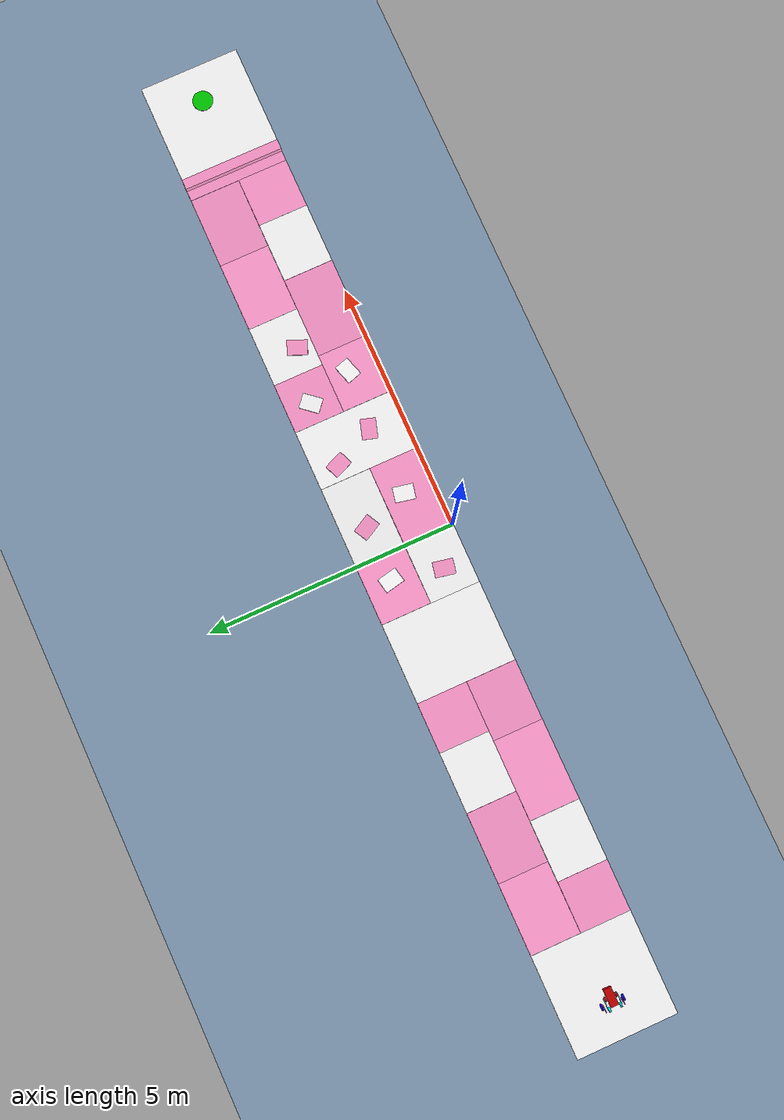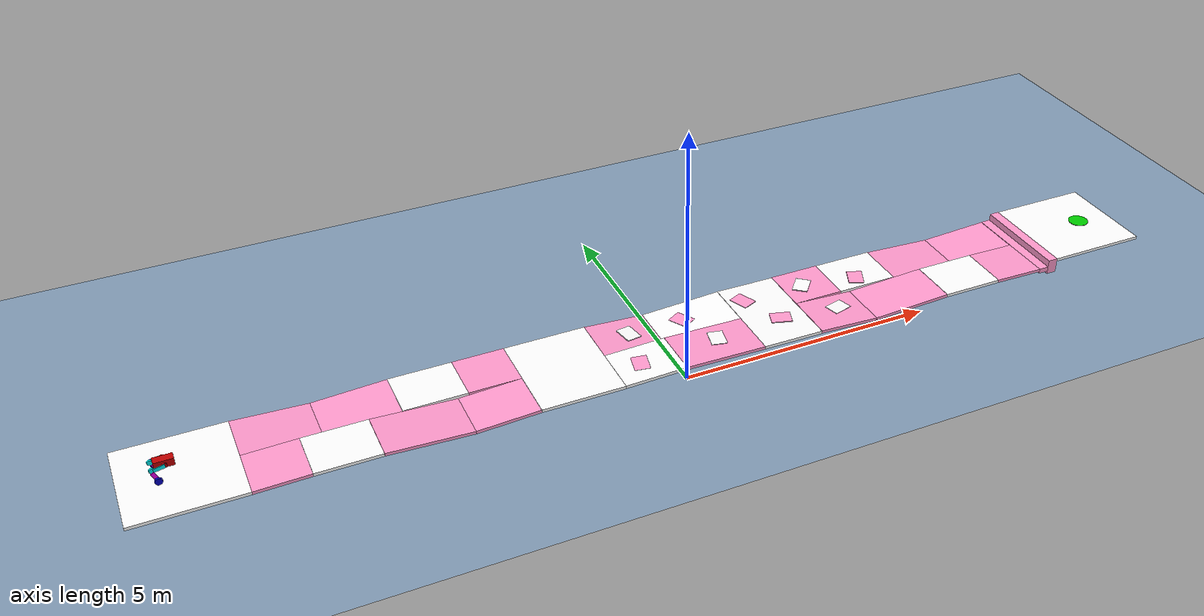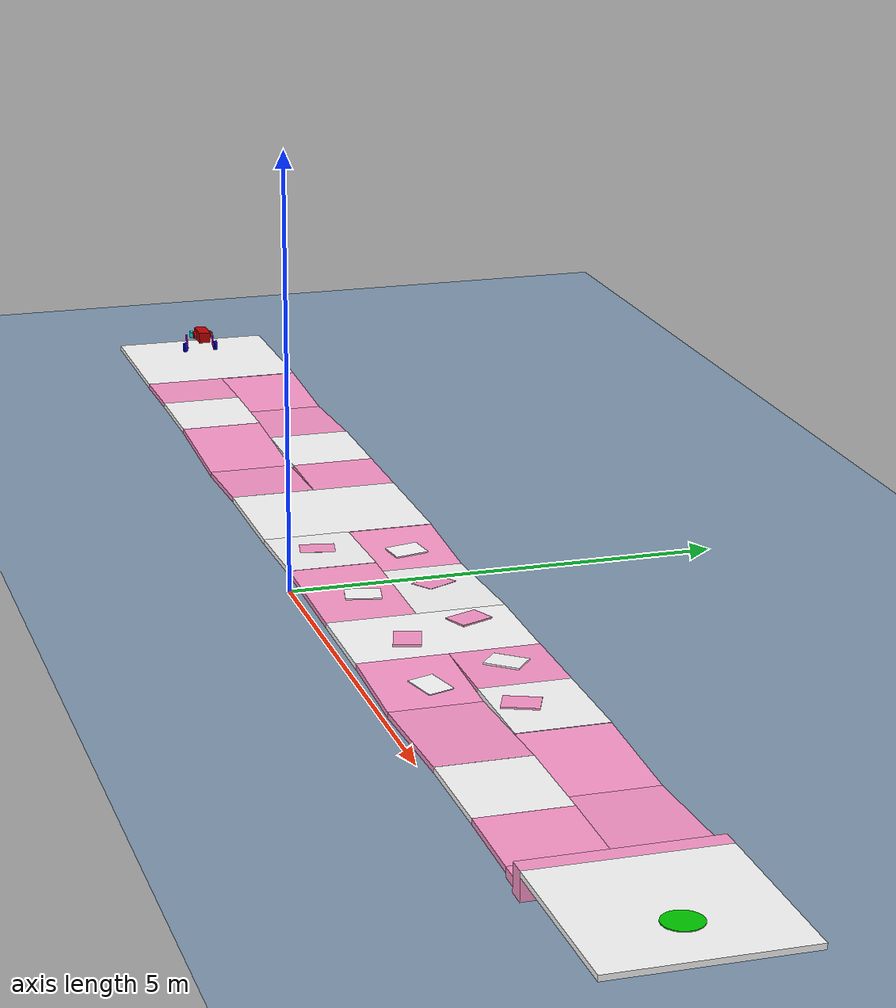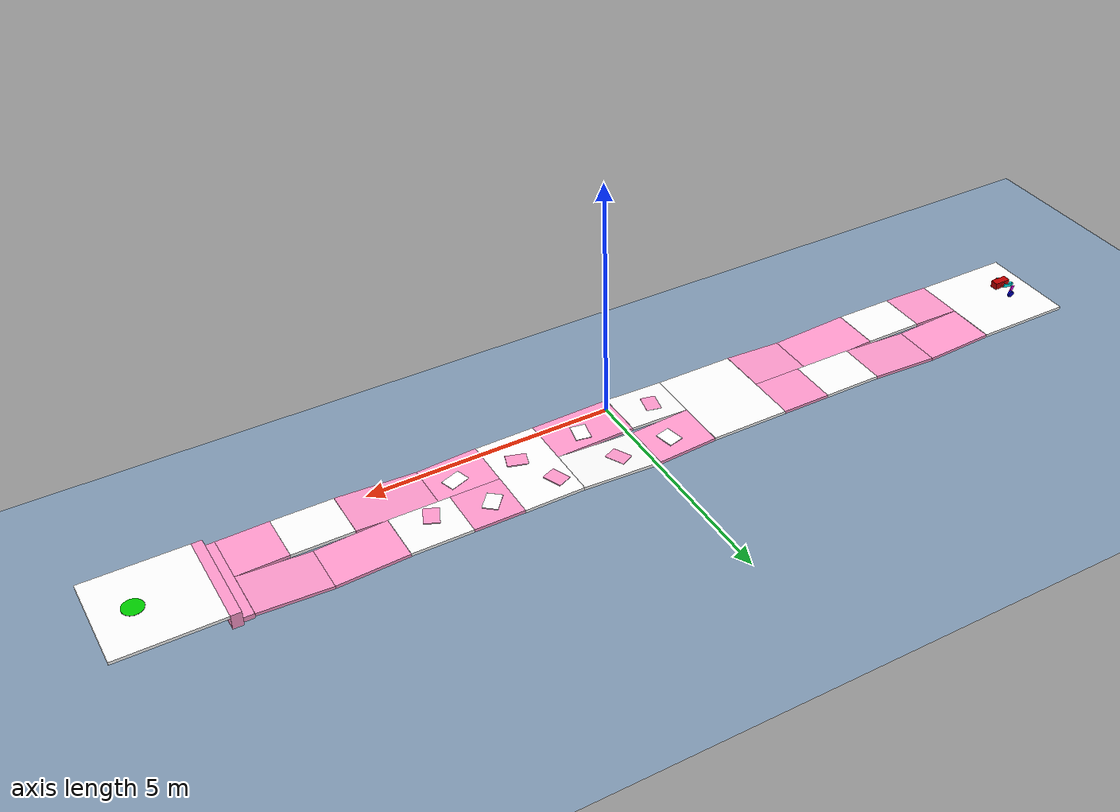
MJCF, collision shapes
<mujoco model="arx7">
  <compiler angle="radian" meshdir="./meshes/"/>
  <option timestep="0.002" integrator="RK4" gravity="0 0 -9.806" solver="Newton" noslip_iterations="0"/>
  <size njmax="10000" nconmax="10000"/>
  <default>
    <geom contype="1" conaffinity="1" rgba="0.5 0.6 0.7 1" margin="0.001" group="0"/>
    <motor gear="20" ctrllimited="true" ctrlrange="-40 40" />
    <position gear="10" ctrllimited="true" kp="5"/>
    <joint limited="true" frictionloss="0.5" damping="45" armature="0.1"/>
  </default>

  <asset>
    <mesh name="base_link" file="chassis/base_link.STL"/>
    <mesh name="left_thigh" file="chassis/left_thigh.STL"/>
    <mesh name="left_shin" file="chassis/left_shin.STL"/>
    <mesh name="left_wheel" file="chassis/left_wheel.STL"/>
    <mesh name="right_thigh" file="chassis/right_thigh.STL"/>
    <mesh name="right_shin" file="chassis/right_shin.STL"/>
    <mesh name="right_wheel" file="chassis/right_wheel.STL"/>

    <mesh name="stair1" file="stair/stair1.STL"/>
    <mesh name="stair2" file="stair/stair2.STL"/>
    <mesh name="stair3" file="stair/stair3.STL"/>
    <mesh name="stair4" file="stair/stair4.STL"/>
    <mesh name="stair5" file="stair/stair5.STL"/>
  </asset>

  <asset>
    <texture name="grid" type="2d" builtin="checker" rgb1=".9 .8 .7" rgb2=".4 .4 .4" width="300" height="300" mark="edge" markrgb=".2 .3 .4"/>
    <material name="grid" texture="grid" texrepeat="2 2" texuniform="true" reflectance=".2"/>
  </asset>

  <visual>
    <global offwidth="1920" offheight="1080"/>
    <rgba com="0.502 1.0 0 0.5" contactforce="0.98 0.4 0.4 0.7" contactpoint="1.0 1.0 0.6 0.4"/>
    <scale com="0.2" forcewidth="0.035" contactwidth="0.10" contactheight="0.04"/>
  </visual>

  <worldbody>
    <light directional="true" diffuse=".8 .8 .8" pos="0 0 10" dir="0 0 -10"/>
    <light pos="0.5 -.4 1." dir="1 2 -1.5" diffuse=".6 .6 .6"/>
    <camera name="top" pos="0. 0. 2." xyaxes="1.000 0.0 0.000 0.0 1.000 0.017"/>
    <camera name="left" pos="0. 1 0.3" xyaxes="-1. 0. 0. 0. 0. 1."/>
    <camera name="right" pos="0. -1 0.3" xyaxes="1. 0. 0. 0. 0. 1."/>
    <camera name="track" mode="trackcom" fovy="45" pos="0.5 -1. 0.35" xyaxes="0.866 0.5 0 0 0 1"/>
    <geom name="ground" type="plane" pos="0 0 0" size="20 20 0.1" material="grid" solimp=".9 .95 .001" solref='-10000 -1000'/>

    <geom name="box1" pos="-0.6 1.5 0.14" size="0.6 0.5 0.03" type="box" rgba="1 0.6 0.8 1" euler="0 0.06 0" conaffinity="1"/>
    <geom name="box1r" pos="-0.6 0.5 0.2" size="0.6 0.5 0.03" type="box" rgba="1 1 1 1" euler="0 -0.03 0" conaffinity="1"/>
    <geom name="box2" pos="-2 1 0.18" size="0.8 1 0.03" type="box" rgba="1 1 1 1" euler="0 0 0" conaffinity="1"/>
    <geom name="box3" pos="-3.3 1.5 0.18" size="0.5 0.5 0.03" type="box" rgba="1 0.6 0.8 1" euler="0 0 0" conaffinity="1"/>
    <geom name="box3r" pos="-3.4 0.5 0.15" size="0.6 0.5 0.03" type="box" rgba="1 0.6 0.8 1" euler="0 -0.05 0" conaffinity="1"/>
    <geom name="box4" pos="-4.4 1.5 0.18" size="0.6 0.5 0.03" type="box" rgba="1 1 1 1" euler="0 0 0" conaffinity="1"/>
    <geom name="box4r" pos="-4.8 0.5 0.16" size="0.8 0.5 0.03" type="box" rgba="1 0.6 0.8 1" euler="0 0.05 0" conaffinity="1"/>
    <geom name="box5" pos="-5.7 1.5 0.14" size="0.7 0.5 0.03" type="box" rgba="1 0.6 0.8 1" euler="0 -0.05 -0" conaffinity="1"/>
    <geom name="box5r" pos="-6.2 0.5 0.2" size="0.6 0.5 0.03" type="box" rgba="1 1 1 1" euler="0 0 0" conaffinity="1"/>
    <geom name="box6" pos="-7.1 1.5 0.14" size="0.7 0.5 0.03" type="box" rgba="1 0.6 0.8 1" euler="0 0.05 0" conaffinity="1"/>
    <geom name="box6r" pos="-7.3 0.5 0.19" size="0.5 0.5 0.03" type="box" rgba="1 0.6 0.8 1" euler="0 -0.02 0" conaffinity="1"/>
    <geom name="box7" pos="-8.8 1 0.18" size="1 1 0.03" type="box" rgba="1 1 1 1" euler="0 0 0" conaffinity="1"/>

    <geom name="box8" pos="9.2 1 0.32" size="1 1 0.03" type="box" rgba="1 1 1 1" euler="0 0 0" conaffinity="1"/>
    <geom name="stair1" type="mesh" mesh="stair1" pos="7.8 0 0.11" rgba="1 0.6 0.8 1"/>
    <geom name="stair2" type="mesh" mesh="stair3" pos="8 0 0.05" rgba="1 0.6 0.8 1"/>
    <geom name="box9r" pos="7.3 0.5 0.19" size="0.5 0.5 0.03" type="box" rgba="1 0.6 0.8 1" euler="0 0.02 0" conaffinity="1"/>
    <geom name="box9" pos="7.1 1.5 0.14" size="0.7 0.5 0.03" type="box" rgba="1 0.6 0.8 1" euler="0 -0.05 0" conaffinity="1"/>
    <geom name="box10r" pos="6.2 0.5 0.2" size="0.6 0.5 0.03" type="box" rgba="1 1 1 1" euler="0 0 0" conaffinity="1"/>
    <geom name="box10" pos="5.7 1.5 0.14" size="0.7 0.5 0.03" type="box" rgba="1 0.6 0.8 1" euler="0 0.05 -0" conaffinity="1"/>
    <geom name="box11r" pos="4.8 0.5 0.16" size="0.8 0.5 0.03" type="box" rgba="1 0.6 0.8 1" euler="0 -0.05 0" conaffinity="1"/>
    <geom name="box11" pos="4.4 1.5 0.18" size="0.6 0.5 0.03" type="box" rgba="1 1 1 1" euler="0 0 0" conaffinity="1"/>
    <geom name="box12r" pos="3.4 0.5 0.15" size="0.6 0.5 0.03" type="box" rgba="1 0.6 0.8 1" euler="0 0.05 0" conaffinity="1"/>
    <geom name="box12" pos="3.3 1.5 0.18" size="0.5 0.5 0.03" type="box" rgba="1 0.6 0.8 1" euler="0 0 0" conaffinity="1"/>
    <geom name="box13" pos="2.2 1 0.18" size="0.6 1 0.03" type="box" rgba="1 1 1 1" euler="0 0.01 0" conaffinity="1"/>
    <geom name="box14" pos="0.8 1.5 0.145" size="0.8 0.5 0.03" type="box" rgba="1 1 1 1" euler="0 -0.05 0" conaffinity="1"/>
    <geom name="box14r" pos="0.8 0.5 0.2" size="0.8 0.5 0.03" type="box" rgba="1 0.6 0.8 1" euler="0 0.02 0" conaffinity="1"/>

    <geom name="obs1" pos="4.3 1.3 0.218" size="0.15 0.2 0.01" type="box" rgba="1 0.6 0.8 1" euler="0 0 -0.4" conaffinity="1"/>
    <geom name="obs2" pos="3.5 0.6 0.175" size="0.2 0.15 0.01" type="box" rgba="1 1 1 1" euler="0 0.05 0.3" conaffinity="1"/>
    <geom name="obs3" pos="3.2 1.5 0.218" size="0.15 0.2 0.01" type="box" rgba="1 1 1 1" euler="0 0 -0.7" conaffinity="1"/>
    <geom name="obs4" pos="2.3 0.7 0.218" size="0.2 0.15 0.01" type="box" rgba="1 0.6 0.8 1" euler="0 -0.01 -0.3" conaffinity="1"/>
    <geom name="obs5" pos="1.9 1.5 0.218" size="0.15 0.2 0.01" type="box" rgba="1 0.6 0.8 1" euler="0 -0.01 0.4" conaffinity="1"/>
    <geom name="obs6" pos="0.9 0.6 0.23" size="0.15 0.2 0.01" type="box" rgba="1 1 1 1" euler="0 0.02 -0.2" conaffinity="1"/>
    <geom name="obs7" pos="0.6 1.5 0.16" size="0.15 0.2 0.01" type="box" rgba="1 0.6 0.8 1" euler="0 -0.05 0.5" conaffinity="1"/>
    <geom name="obs8" pos="-0.5 1.5 0.17" size="0.15 0.2 0.01" type="box" rgba="1 1 1 1" euler="0 0.06 0.2" conaffinity="1"/>
    <geom name="obs9" pos="-0.7 0.5 0.22" size="0.15 0.2 0.01" type="box" rgba="1 0.6 0.8 1" euler="0 -0.03 -0.2" conaffinity="1"/>
    <geom name="end" type="cylinder" pos="9.5 1 0.35" size="0.2 0.01 0" rgba="0. 0.8 0. 1" conaffinity="0"/>

    <!-- ======= ROBOT ======= -->
    <body name="base_link" pos="-9 1 0.45" euler="0 0 0">
      <inertial pos="0.018885 0.00062964 0.06018" quat="-0.064773 0.618315 0.0968439 0.777246" mass="4.6733" diaginertia="0.054592 0.0348635 0.0323885"/>
      <joint name="floating_base" type="free" limited="false" frictionloss="0.001" damping="0.01" armature="0."/>

      <geom name="base1" type="mesh" contype="0" conaffinity="0" group="1" density="0" rgba="0.75294 0 0 1" mesh="base_link"/>
      <geom name="base2" size="0.17 0.077 0.07" pos="0.02 0 0.06" type="box" rgba="0.75294 0 0 0.000987654321"/>
      <geom name="base3" size="0.048 0.0175" pos="0.017241 0.106 0.0613" quat="0.499998 -0.500002 0.5 0.5" type="cylinder" rgba="0.75294 0 0 0.000987654321"/>
      <geom name="base4" size="0.048 0.0175" pos="0.017241 -0.106 0.0613" quat="0.499998 -0.500002 0.5 0.5" type="cylinder" rgba="0.75294 0 0 0.000987654321"/>
      <site name="imu" pos="0 0 0"/>
      <body name="left_thigh" pos="0.017241 0.13399 0.0613" euler="-1.57 0 2.95">
        <inertial pos="0.17494 0.0025294 0.012308" quat="0.0283574 0.728032 0.00169629 0.684954" mass="1.3343" diaginertia="0.00985328 0.00920167 0.00123438"/>
        <joint name="left_hip" pos="0 0 0" axis="0 0 1" range="-0.5 0.5"/>
        <geom name="left_thigh1" type="mesh" contype="0" conaffinity="0" group="1" density="0" rgba="0.89804 0.91765 0 1" mesh="left_thigh"/>
        <geom name="left_thigh2" size="0.1 0.035 0.005" pos="0.085 0 0" type="box" rgba="0 0.91765 0.92941 0.000987654321"/>
        <geom name="left_thigh3" size="0.048 0.0175" pos="0.21 0 -0.02375" type="cylinder" rgba="0 0.91765 0.92941 0.000987654321"/>
        <body name="left_shin" pos="0.21 0 0.0475" euler="0 0 -1.75">
          <inertial pos="0.15612 0.00046249 0.020119" quat="-0.0169558 0.755863 -0.00997261 0.654434" mass="0.94398" diaginertia="0.00396686 0.00358627 0.000682696"/>
          <joint name="left_knee" pos="0 0 0" axis="0 0 1" range="-0.5 0.5"/>
          <geom type="mesh" contype="0" conaffinity="0" group="1" density="0" rgba="0.89804 0.91765 0 1" mesh="left_shin"/>
          <geom size="0.1 0.035 0.005" pos="0.1 0 0" type="box" rgba="0.89804 0 0.92941 0.000987654321"/>
          <body name="left_wheel" pos="0.18 0 0.0305">
            <inertial pos="0 0 0.0012686" quat="0.5 0.5 -0.5 0.5" mass="0.44583" diaginertia="0.0014254 0.00076522 0.00076522"/>
            <joint name="left_ankle" pos="0 0 0" axis="0 0 1" limited="false"/>
            <geom type="mesh" contype="0" conaffinity="0" group="1" density="0" rgba="0.75294 0 0 1" mesh="left_wheel"/>
            <geom size="0.065 0.02" type="cylinder" rgba="0 0 0.75294 0.000987654321"/>
          </body>
        </body>
      </body>
      <body name="right_thigh" pos="0.017241 -0.13501 0.0613" euler="-1.57 0 2.95">
        <inertial pos="0.17494 0.0025279 -0.012308" quat="-0.00169159 0.684955 -0.0283402 0.728032" mass="1.3343" diaginertia="0.00985329 0.00920166 0.00123441"/>
        <joint name="right_hip" pos="0 0 0" axis="0 0 1" range="-0.5 0.5"/>
        <geom name="right_thigh1" type="mesh" contype="0" conaffinity="0" group="1" density="0" rgba="0.89804 0.91765 0 1" mesh="right_thigh"/>
        <geom name="right_thigh2" size="0.1 0.035 0.005" pos="0.085 0 0" type="box" rgba="0 0.91765 0.92941 0.000987654321"/>
        <geom name="right_thigh3" size="0.048 0.0175" pos="0.21 0 0.02375" type="cylinder" rgba="0 0.91765 0.92941 0.000987654321"/>
        <body name="right_shin" pos="0.21 0 -0.0475" euler="0 0 -1.75">
          <inertial pos="0.15612 0.00046556 -0.020119" quat="0.00996675 0.654435 0.0169079 0.755863" mass="0.94398" diaginertia="0.00396686 0.00358627 0.000682701"/>
          <joint name="right_knee" pos="0 0 0" axis="0 0 1" range="-0.5 0.5"/>
          <geom type="mesh" contype="0" conaffinity="0" group="1" density="0" rgba="0.89804 0.91765 0 1" mesh="right_shin"/>
          <geom size="0.1 0.035 0.005" pos="0.1 0 0" type="box" rgba="0.89804 0 0.92941 0.000987654321"/>
          <body name="right_wheel" pos="0.18 0 -0.0305">
            <inertial pos="0 0 -0.0012686" quat="0.5 0.5 -0.5 0.5" mass="0.44583" diaginertia="0.0014254 0.00076522 0.00076522"/>
            <joint name="right_ankle" pos="0 0 0" axis="0 0 1" limited="false"/>
            <geom type="mesh" contype="0" conaffinity="0" group="1" density="0" rgba="0.75294 0 0 1" mesh="right_wheel"/>
            <geom size="0.065 0.02" type="cylinder" rgba="0 0 0.75294 0.000987654321"/>
          </body>
        </body>
      </body>
    </body>
  </worldbody>
  <actuator>
    <position name="left_hip_motor" joint="left_hip" ctrlrange="-5 5" />
    <position name="left_knee_motor" joint="left_knee" ctrlrange="-5 5"/>
    <motor name="left_ankle_motor" joint="left_ankle" ctrlrange="-40 40"/>
    <position name="right_hip_motor" joint="right_hip" ctrlrange="-5 5" />
    <position name="right_knee_motor" joint="right_knee" ctrlrange="-5 5"/>
    <motor name="right_ankle_motor" joint="right_ankle" ctrlrange="-40 40"/>

  </actuator>

  <sensor>
    <!-- The sensor sequence cannot be changed -->
    <framequat name="Body_Quat" objtype="site" objname="imu" />
    <gyro name="Body_Gyro" site="imu" />
    <accelerometer name="Body_Acc" site="imu" />
  </sensor>

</mujoco>
